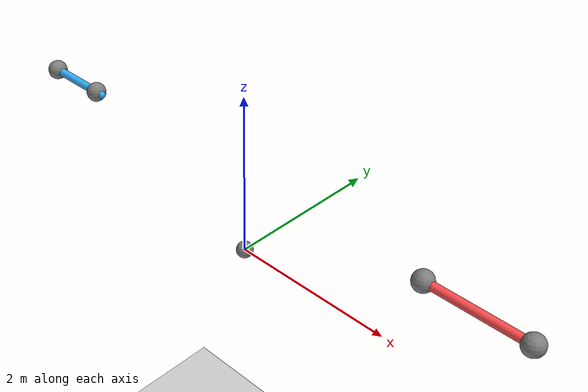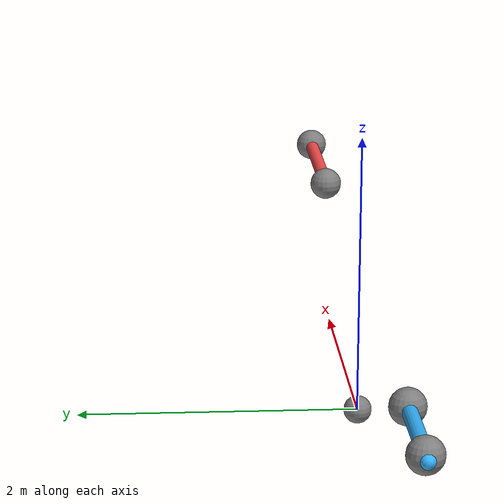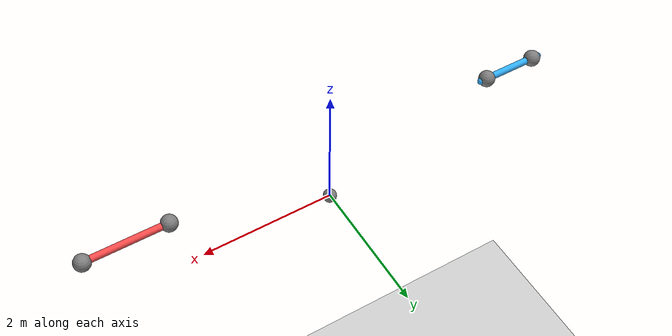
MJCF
<mujoco>
  <option gravity="0 0 -9.81"/>
  <worldbody>
    <body name="ground" pos="0 0 -10">
      <geom type="plane" size="30 30 0.1" rgba="0.8 0.8 0.8 1"/>
    </body>
    <body name="pivot" pos="0 0 0">
      <geom type="sphere" size="0.1" rgba="0.5 0.5 0.5 1"/>
    </body>
    <body name="rod_with_close_masses" pos="-3 0 1">
      <geom type="capsule" fromto="-0.5 0 0 0.5 0 0" size="0.05" density="0.15" rgba="0.2 0.7 1 1"/>
      <geom type="sphere" pos="-0.4 0 0" size="0.12" density="1.4"/>
      <geom type="sphere" pos="0.4 0 0" size="0.12" density="1.4"/>
      <joint name="rot_joint1" type="hinge" axis="0 0 1"/>
    </body>
    <body name="rod_with_far_masses" pos="3 0 1">
      <geom type="capsule" fromto="-0.5 0 0 0.5 0 0" size="0.05" density="0.25" rgba="1 0.3 0.3 1"/>
      <geom type="sphere" pos="-0.6 0 0" size="0.12" density="1.6"/>
      <geom type="sphere" pos="0.6 0 0" size="0.12" density="1.6"/>
      <joint name="rot_joint2" type="hinge" axis="0 0 1"/>
    </body>
  </worldbody>
</mujoco>
